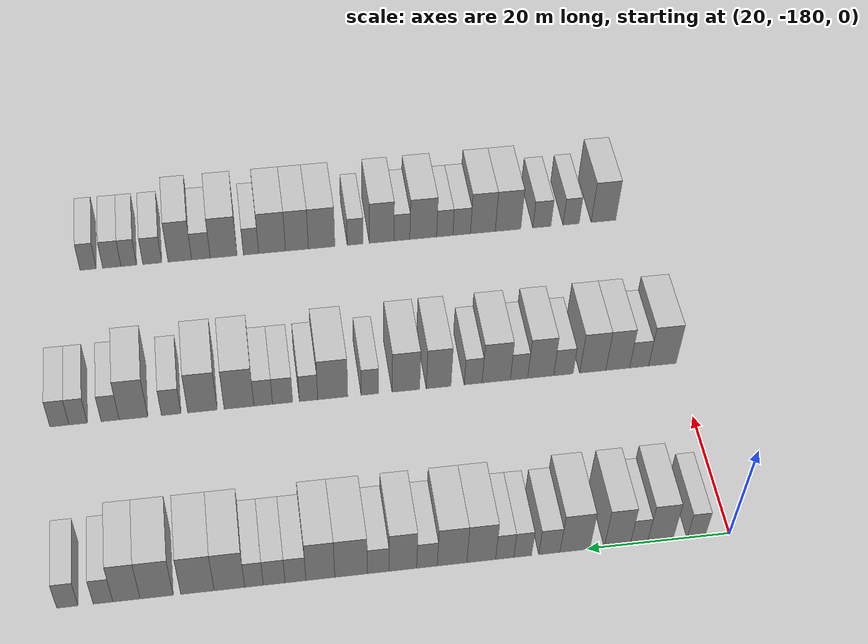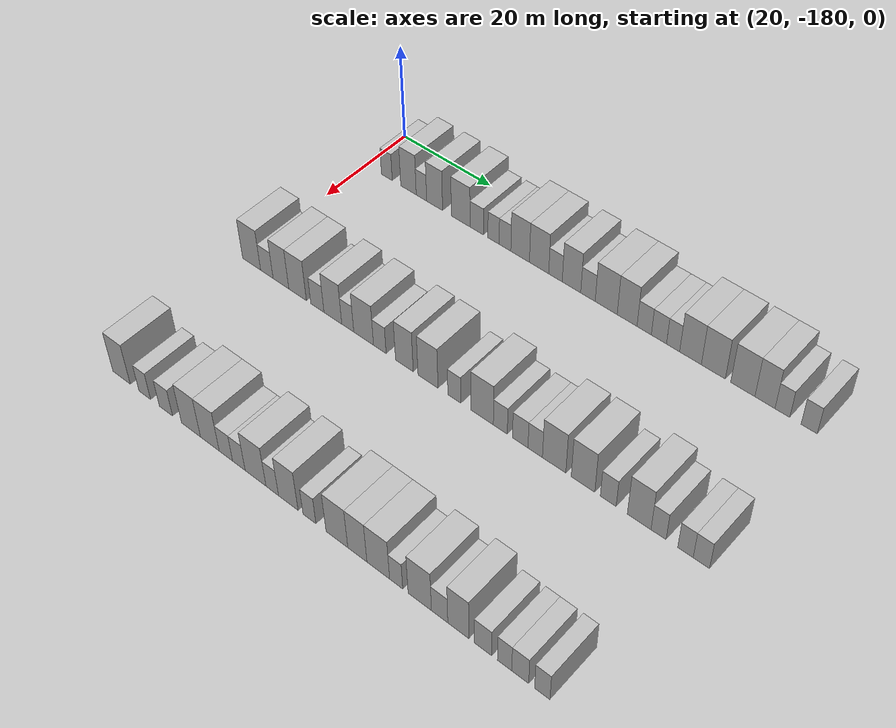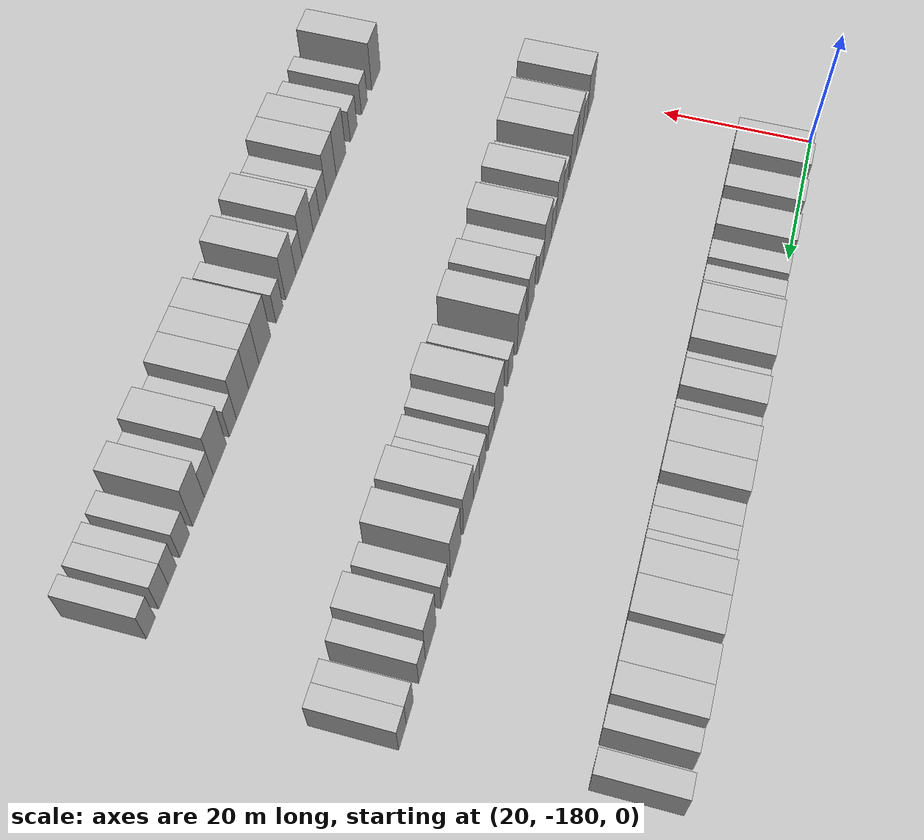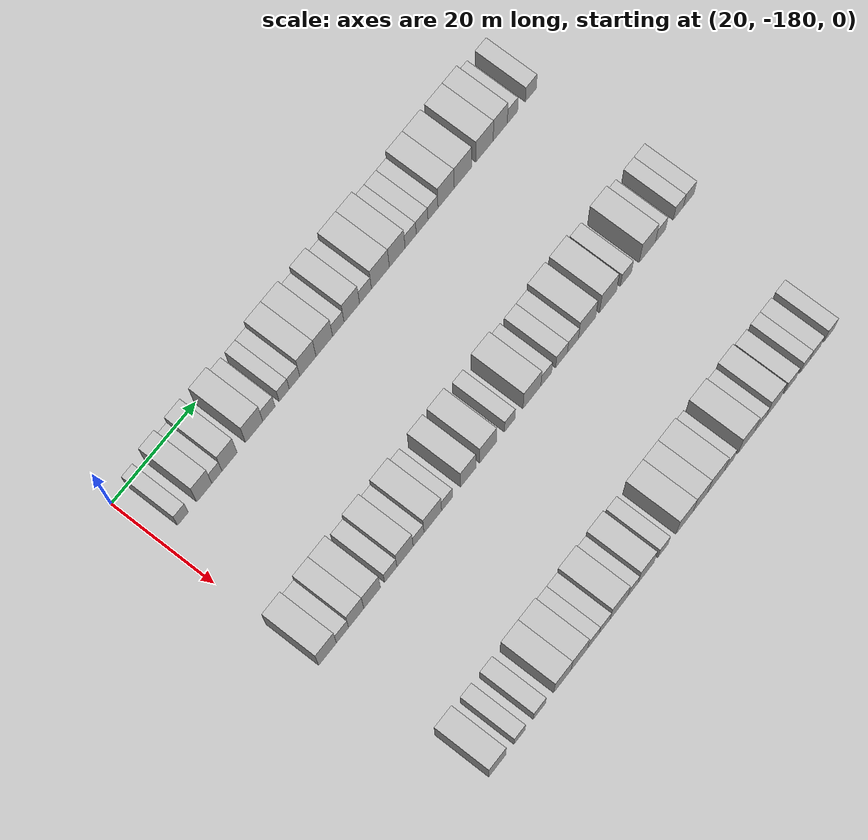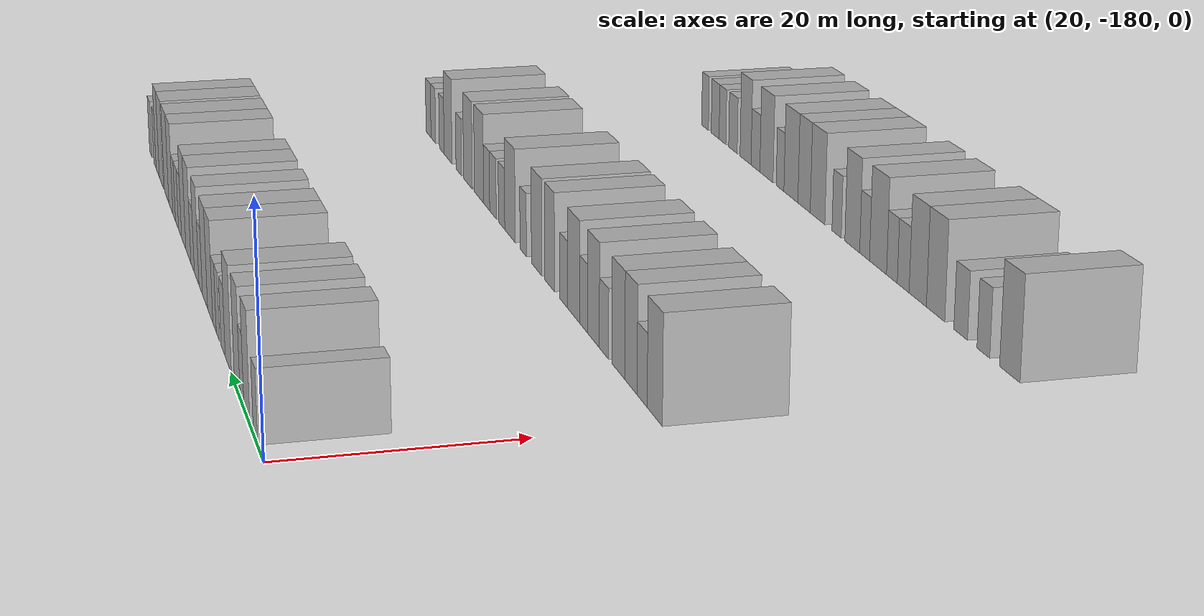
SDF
<sdf version="1.6">
 <world name="default">
  <model name="building_26">
   <static>1</static>
   <pose>25.0000 -175.1962 0 0.000000 0.000000 0.000000</pose>
   <link name="link">
    <pose>0 0 3.00 0 0 0</pose>
    <collision name="collision"><geometry><box><size>10.0000 2.5617 6.0000</size></box></geometry></collision>
    <visual name="visual">
     <cast_shadows>0</cast_shadows>
     <geometry><box><size>10.0000 2.5617 6.0000</size></box></geometry>
     <material>
      <script>
       <uri>model://HANNAS_wall/materials/scripts</uri>
       <uri>model://HANNAS_wall/materials/textures</uri>
       <name>vrc/HANNAS_wall</name>
      </script>
     </material>
    </visual>
   </link>
  </model>
  <model name="building_27">
   <static>1</static>
   <pose>25.0000 -170.1131 0 0.000000 0.000000 0.000000</pose>
   <link name="link">
    <pose>0 0 4.50 0 0 0</pose>
    <collision name="collision"><geometry><box><size>10.0000 3.6046 9.0000</size></box></geometry></collision>
    <visual name="visual">
     <cast_shadows>0</cast_shadows>
     <geometry><box><size>10.0000 3.6046 9.0000</size></box></geometry>
     <material>
      <script>
       <uri>model://HANNAS_wall/materials/scripts</uri>
       <uri>model://HANNAS_wall/materials/textures</uri>
       <name>vrc/HANNAS_wall</name>
      </script>
     </material>
    </visual>
   </link>
  </model>
  <model name="building_28">
   <static>1</static>
   <pose>25.0000 -167.1066 0 0.000000 0.000000 0.000000</pose>
   <link name="link">
    <pose>0 0 3.00 0 0 0</pose>
    <collision name="collision"><geometry><box><size>10.0000 2.4084 6.0000</size></box></geometry></collision>
    <visual name="visual">
     <cast_shadows>0</cast_shadows>
     <geometry><box><size>10.0000 2.4084 6.0000</size></box></geometry>
     <material>
      <script>
       <uri>model://HANNAS_wall/materials/scripts</uri>
       <uri>model://HANNAS_wall/materials/textures</uri>
       <name>vrc/HANNAS_wall</name>
      </script>
     </material>
    </visual>
   </link>
  </model>
  <model name="building_29">
   <static>1</static>
   <pose>25.0000 -164.0829 0 0.000000 0.000000 0.000000</pose>
   <link name="link">
    <pose>0 0 4.50 0 0 0</pose>
    <collision name="collision"><geometry><box><size>10.0000 3.6389 9.0000</size></box></geometry></collision>
    <visual name="visual">
     <cast_shadows>0</cast_shadows>
     <geometry><box><size>10.0000 3.6389 9.0000</size></box></geometry>
     <material>
      <script>
       <uri>model://HANNAS_wall/materials/scripts</uri>
       <uri>model://HANNAS_wall/materials/textures</uri>
       <name>vrc/HANNAS_wall</name>
      </script>
     </material>
    </visual>
   </link>
  </model>
  <model name="building_30">
   <static>1</static>
   <pose>25.0000 -158.1772 0 0.000000 0.000000 0.000000</pose>
   <link name="link">
    <pose>0 0 4.50 0 0 0</pose>
    <collision name="collision"><geometry><box><size>10.0000 4.1725 9.0000</size></box></geometry></collision>
    <visual name="visual">
     <cast_shadows>0</cast_shadows>
     <geometry><box><size>10.0000 4.1725 9.0000</size></box></geometry>
     <material>
      <script>
       <uri>model://HANNAS_wall/materials/scripts</uri>
       <uri>model://HANNAS_wall/materials/textures</uri>
       <name>vrc/HANNAS_wall</name>
      </script>
     </material>
    </visual>
   </link>
  </model>
  <model name="building_31">
   <static>1</static>
   <pose>25.0000 -154.6167 0 0.000000 0.000000 0.000000</pose>
   <link name="link">
    <pose>0 0 3.00 0 0 0</pose>
    <collision name="collision"><geometry><box><size>10.0000 2.9485 6.0000</size></box></geometry></collision>
    <visual name="visual">
     <cast_shadows>0</cast_shadows>
     <geometry><box><size>10.0000 2.9485 6.0000</size></box></geometry>
     <material>
      <script>
       <uri>model://HANNAS_wall/materials/scripts</uri>
       <uri>model://HANNAS_wall/materials/textures</uri>
       <name>vrc/HANNAS_wall</name>
      </script>
     </material>
    </visual>
   </link>
  </model>
  <model name="building_32">
   <static>1</static>
   <pose>25.0000 -150.9131 0 0.000000 0.000000 0.000000</pose>
   <link name="link">
    <pose>0 0 3.00 0 0 0</pose>
    <collision name="collision"><geometry><box><size>10.0000 2.4588 6.0000</size></box></geometry></collision>
    <visual name="visual">
     <cast_shadows>0</cast_shadows>
     <geometry><box><size>10.0000 2.4588 6.0000</size></box></geometry>
     <material>
      <script>
       <uri>model://HANNAS_wall/materials/scripts</uri>
       <uri>model://HANNAS_wall/materials/textures</uri>
       <name>vrc/HANNAS_wall</name>
      </script>
     </material>
    </visual>
   </link>
  </model>
  <model name="building_33">
   <static>1</static>
   <pose>25.0000 -148.4182 0 0.000000 0.000000 0.000000</pose>
   <link name="link">
    <pose>0 0 3.00 0 0 0</pose>
    <collision name="collision"><geometry><box><size>10.0000 2.5310 6.0000</size></box></geometry></collision>
    <visual name="visual">
     <cast_shadows>0</cast_shadows>
     <geometry><box><size>10.0000 2.5310 6.0000</size></box></geometry>
     <material>
      <script>
       <uri>model://HANNAS_wall/materials/scripts</uri>
       <uri>model://HANNAS_wall/materials/textures</uri>
       <name>vrc/HANNAS_wall</name>
      </script>
     </material>
    </visual>
   </link>
  </model>
  <model name="building_34">
   <static>1</static>
   <pose>25.0000 -145.1649 0 0.000000 0.000000 0.000000</pose>
   <link name="link">
    <pose>0 0 4.50 0 0 0</pose>
    <collision name="collision"><geometry><box><size>10.0000 3.9757 9.0000</size></box></geometry></collision>
    <visual name="visual">
     <cast_shadows>0</cast_shadows>
     <geometry><box><size>10.0000 3.9757 9.0000</size></box></geometry>
     <material>
      <script>
       <uri>model://HANNAS_wall/materials/scripts</uri>
       <uri>model://HANNAS_wall/materials/textures</uri>
       <name>vrc/HANNAS_wall</name>
      </script>
     </material>
    </visual>
   </link>
  </model>
  <model name="building_35">
   <static>1</static>
   <pose>25.0000 -141.1430 0 0.000000 0.000000 0.000000</pose>
   <link name="link">
    <pose>0 0 4.50 0 0 0</pose>
    <collision name="collision"><geometry><box><size>10.0000 4.0681 9.0000</size></box></geometry></collision>
    <visual name="visual">
     <cast_shadows>0</cast_shadows>
     <geometry><box><size>10.0000 4.0681 9.0000</size></box></geometry>
     <material>
      <script>
       <uri>model://HANNAS_wall/materials/scripts</uri>
       <uri>model://HANNAS_wall/materials/textures</uri>
       <name>vrc/HANNAS_wall</name>
      </script>
     </material>
    </visual>
   </link>
  </model>
  <model name="building_36">
   <static>1</static>
   <pose>25.0000 -137.6961 0 0.000000 0.000000 0.000000</pose>
   <link name="link">
    <pose>0 0 3.00 0 0 0</pose>
    <collision name="collision"><geometry><box><size>10.0000 2.8258 6.0000</size></box></geometry></collision>
    <visual name="visual">
     <cast_shadows>0</cast_shadows>
     <geometry><box><size>10.0000 2.8258 6.0000</size></box></geometry>
     <material>
      <script>
       <uri>model://HANNAS_wall/materials/scripts</uri>
       <uri>model://HANNAS_wall/materials/textures</uri>
       <name>vrc/HANNAS_wall</name>
      </script>
     </material>
    </visual>
   </link>
  </model>
  <model name="building_37">
   <static>1</static>
   <pose>25.0000 -134.3732 0 0.000000 0.000000 0.000000</pose>
   <link name="link">
    <pose>0 0 4.50 0 0 0</pose>
    <collision name="collision"><geometry><box><size>10.0000 3.8199 9.0000</size></box></geometry></collision>
    <visual name="visual">
     <cast_shadows>0</cast_shadows>
     <geometry><box><size>10.0000 3.8199 9.0000</size></box></geometry>
     <material>
      <script>
       <uri>model://HANNAS_wall/materials/scripts</uri>
       <uri>model://HANNAS_wall/materials/textures</uri>
       <name>vrc/HANNAS_wall</name>
      </script>
     </material>
    </visual>
   </link>
  </model>
  <model name="building_38">
   <static>1</static>
   <pose>25.0000 -130.9927 0 0.000000 0.000000 0.000000</pose>
   <link name="link">
    <pose>0 0 3.00 0 0 0</pose>
    <collision name="collision"><geometry><box><size>10.0000 2.9412 6.0000</size></box></geometry></collision>
    <visual name="visual">
     <cast_shadows>0</cast_shadows>
     <geometry><box><size>10.0000 2.9412 6.0000</size></box></geometry>
     <material>
      <script>
       <uri>model://HANNAS_wall/materials/scripts</uri>
       <uri>model://HANNAS_wall/materials/textures</uri>
       <name>vrc/HANNAS_wall</name>
      </script>
     </material>
    </visual>
   </link>
  </model>
  <model name="building_39">
   <static>1</static>
   <pose>25.0000 -127.3093 0 0.000000 0.000000 0.000000</pose>
   <link name="link">
    <pose>0 0 4.50 0 0 0</pose>
    <collision name="collision"><geometry><box><size>10.0000 4.4257 9.0000</size></box></geometry></collision>
    <visual name="visual">
     <cast_shadows>0</cast_shadows>
     <geometry><box><size>10.0000 4.4257 9.0000</size></box></geometry>
     <material>
      <script>
       <uri>model://HANNAS_wall/materials/scripts</uri>
       <uri>model://HANNAS_wall/materials/textures</uri>
       <name>vrc/HANNAS_wall</name>
      </script>
     </material>
    </visual>
   </link>
  </model>
  <model name="building_40">
   <static>1</static>
   <pose>25.0000 -123.1320 0 0.000000 0.000000 0.000000</pose>
   <link name="link">
    <pose>0 0 4.50 0 0 0</pose>
    <collision name="collision"><geometry><box><size>10.0000 3.9288 9.0000</size></box></geometry></collision>
    <visual name="visual">
     <cast_shadows>0</cast_shadows>
     <geometry><box><size>10.0000 3.9288 9.0000</size></box></geometry>
     <material>
      <script>
       <uri>model://HANNAS_wall/materials/scripts</uri>
       <uri>model://HANNAS_wall/materials/textures</uri>
       <name>vrc/HANNAS_wall</name>
      </script>
     </material>
    </visual>
   </link>
  </model>
  <model name="building_41">
   <static>1</static>
   <pose>25.0000 -119.7673 0 0.000000 0.000000 0.000000</pose>
   <link name="link">
    <pose>0 0 3.00 0 0 0</pose>
    <collision name="collision"><geometry><box><size>10.0000 2.8007 6.0000</size></box></geometry></collision>
    <visual name="visual">
     <cast_shadows>0</cast_shadows>
     <geometry><box><size>10.0000 2.8007 6.0000</size></box></geometry>
     <material>
      <script>
       <uri>model://HANNAS_wall/materials/scripts</uri>
       <uri>model://HANNAS_wall/materials/textures</uri>
       <name>vrc/HANNAS_wall</name>
      </script>
     </material>
    </visual>
   </link>
  </model>
  <model name="building_42">
   <static>1</static>
   <pose>25.0000 -116.8925 0 0.000000 0.000000 0.000000</pose>
   <link name="link">
    <pose>0 0 3.00 0 0 0</pose>
    <collision name="collision"><geometry><box><size>10.0000 2.9489 6.0000</size></box></geometry></collision>
    <visual name="visual">
     <cast_shadows>0</cast_shadows>
     <geometry><box><size>10.0000 2.9489 6.0000</size></box></geometry>
     <material>
      <script>
       <uri>model://HANNAS_wall/materials/scripts</uri>
       <uri>model://HANNAS_wall/materials/textures</uri>
       <name>vrc/HANNAS_wall</name>
      </script>
     </material>
    </visual>
   </link>
  </model>
  <model name="building_43">
   <static>1</static>
   <pose>25.0000 -114.1610 0 0.000000 0.000000 0.000000</pose>
   <link name="link">
    <pose>0 0 3.00 0 0 0</pose>
    <collision name="collision"><geometry><box><size>10.0000 2.5140 6.0000</size></box></geometry></collision>
    <visual name="visual">
     <cast_shadows>0</cast_shadows>
     <geometry><box><size>10.0000 2.5140 6.0000</size></box></geometry>
     <material>
      <script>
       <uri>model://HANNAS_wall/materials/scripts</uri>
       <uri>model://HANNAS_wall/materials/textures</uri>
       <name>vrc/HANNAS_wall</name>
      </script>
     </material>
    </visual>
   </link>
  </model>
  <model name="building_44">
   <static>1</static>
   <pose>25.0000 -110.8469 0 0.000000 0.000000 0.000000</pose>
   <link name="link">
    <pose>0 0 4.50 0 0 0</pose>
    <collision name="collision"><geometry><box><size>10.0000 4.1142 9.0000</size></box></geometry></collision>
    <visual name="visual">
     <cast_shadows>0</cast_shadows>
     <geometry><box><size>10.0000 4.1142 9.0000</size></box></geometry>
     <material>
      <script>
       <uri>model://HANNAS_wall/materials/scripts</uri>
       <uri>model://HANNAS_wall/materials/textures</uri>
       <name>vrc/HANNAS_wall</name>
      </script>
     </material>
    </visual>
   </link>
  </model>
  <model name="building_45">
   <static>1</static>
   <pose>25.0000 -106.5498 0 0.000000 0.000000 0.000000</pose>
   <link name="link">
    <pose>0 0 4.50 0 0 0</pose>
    <collision name="collision"><geometry><box><size>10.0000 4.4800 9.0000</size></box></geometry></collision>
    <visual name="visual">
     <cast_shadows>0</cast_shadows>
     <geometry><box><size>10.0000 4.4800 9.0000</size></box></geometry>
     <material>
      <script>
       <uri>model://HANNAS_wall/materials/scripts</uri>
       <uri>model://HANNAS_wall/materials/textures</uri>
       <name>vrc/HANNAS_wall</name>
      </script>
     </material>
    </visual>
   </link>
  </model>
  <model name="building_46">
   <static>1</static>
   <pose>25.0000 -101.0935 0 0.000000 0.000000 0.000000</pose>
   <link name="link">
    <pose>0 0 4.50 0 0 0</pose>
    <collision name="collision"><geometry><box><size>10.0000 4.4326 9.0000</size></box></geometry></collision>
    <visual name="visual">
     <cast_shadows>0</cast_shadows>
     <geometry><box><size>10.0000 4.4326 9.0000</size></box></geometry>
     <material>
      <script>
       <uri>model://HANNAS_wall/materials/scripts</uri>
       <uri>model://HANNAS_wall/materials/textures</uri>
       <name>vrc/HANNAS_wall</name>
      </script>
     </material>
    </visual>
   </link>
  </model>
  <model name="building_47">
   <static>1</static>
   <pose>25.0000 -97.0683 0 0.000000 0.000000 0.000000</pose>
   <link name="link">
    <pose>0 0 4.50 0 0 0</pose>
    <collision name="collision"><geometry><box><size>10.0000 3.6176 9.0000</size></box></geometry></collision>
    <visual name="visual">
     <cast_shadows>0</cast_shadows>
     <geometry><box><size>10.0000 3.6176 9.0000</size></box></geometry>
     <material>
      <script>
       <uri>model://HANNAS_wall/materials/scripts</uri>
       <uri>model://HANNAS_wall/materials/textures</uri>
       <name>vrc/HANNAS_wall</name>
      </script>
     </material>
    </visual>
   </link>
  </model>
  <model name="building_48">
   <static>1</static>
   <pose>25.0000 -93.9503 0 0.000000 0.000000 0.000000</pose>
   <link name="link">
    <pose>0 0 3.00 0 0 0</pose>
    <collision name="collision"><geometry><box><size>10.0000 2.6184 6.0000</size></box></geometry></collision>
    <visual name="visual">
     <cast_shadows>0</cast_shadows>
     <geometry><box><size>10.0000 2.6184 6.0000</size></box></geometry>
     <material>
      <script>
       <uri>model://HANNAS_wall/materials/scripts</uri>
       <uri>model://HANNAS_wall/materials/textures</uri>
       <name>vrc/HANNAS_wall</name>
      </script>
     </material>
    </visual>
   </link>
  </model>
  <model name="building_49">
   <static>1</static>
   <pose>25.0000 -89.2259 0 0.000000 0.000000 0.000000</pose>
   <link name="link">
    <pose>0 0 3.00 0 0 0</pose>
    <collision name="collision"><geometry><box><size>10.0000 2.8306 6.0000</size></box></geometry></collision>
    <visual name="visual">
     <cast_shadows>0</cast_shadows>
     <geometry><box><size>10.0000 2.8306 6.0000</size></box></geometry>
     <material>
      <script>
       <uri>model://HANNAS_wall/materials/scripts</uri>
       <uri>model://HANNAS_wall/materials/textures</uri>
       <name>vrc/HANNAS_wall</name>
      </script>
     </material>
    </visual>
   </link>
  </model>
  <model name="building_164">
   <static>1</static>
   <pose>55.0000 -177.8875 0 0.000000 0.000000 0.000000</pose>
   <link name="link">
    <pose>0 0 4.50 0 0 0</pose>
    <collision name="collision"><geometry><box><size>10.0000 4.2394 9.0000</size></box></geometry></collision>
    <visual name="visual">
     <cast_shadows>0</cast_shadows>
     <geometry><box><size>10.0000 4.2394 9.0000</size></box></geometry>
     <material>
      <script>
       <uri>model://HANNAS_wall/materials/scripts</uri>
       <uri>model://HANNAS_wall/materials/textures</uri>
       <name>vrc/HANNAS_wall</name>
      </script>
     </material>
    </visual>
   </link>
  </model>
  <model name="building_165">
   <static>1</static>
   <pose>55.0000 -174.3128 0 0.000000 0.000000 0.000000</pose>
   <link name="link">
    <pose>0 0 3.00 0 0 0</pose>
    <collision name="collision"><geometry><box><size>10.0000 2.9099 6.0000</size></box></geometry></collision>
    <visual name="visual">
     <cast_shadows>0</cast_shadows>
     <geometry><box><size>10.0000 2.9099 6.0000</size></box></geometry>
     <material>
      <script>
       <uri>model://HANNAS_wall/materials/scripts</uri>
       <uri>model://HANNAS_wall/materials/textures</uri>
       <name>vrc/HANNAS_wall</name>
      </script>
     </material>
    </visual>
   </link>
  </model>
  <model name="building_166">
   <static>1</static>
   <pose>55.0000 -171.0400 0 0.000000 0.000000 0.000000</pose>
   <link name="link">
    <pose>0 0 4.50 0 0 0</pose>
    <collision name="collision"><geometry><box><size>10.0000 3.6358 9.0000</size></box></geometry></collision>
    <visual name="visual">
     <cast_shadows>0</cast_shadows>
     <geometry><box><size>10.0000 3.6358 9.0000</size></box></geometry>
     <material>
      <script>
       <uri>model://HANNAS_wall/materials/scripts</uri>
       <uri>model://HANNAS_wall/materials/textures</uri>
       <name>vrc/HANNAS_wall</name>
      </script>
     </material>
    </visual>
   </link>
  </model>
  <model name="building_167">
   <static>1</static>
   <pose>55.0000 -167.2242 0 0.000000 0.000000 0.000000</pose>
   <link name="link">
    <pose>0 0 4.50 0 0 0</pose>
    <collision name="collision"><geometry><box><size>10.0000 3.9959 9.0000</size></box></geometry></collision>
    <visual name="visual">
     <cast_shadows>0</cast_shadows>
     <geometry><box><size>10.0000 3.9959 9.0000</size></box></geometry>
     <material>
      <script>
       <uri>model://HANNAS_wall/materials/scripts</uri>
       <uri>model://HANNAS_wall/materials/textures</uri>
       <name>vrc/HANNAS_wall</name>
      </script>
     </material>
    </visual>
   </link>
  </model>
  <model name="building_168">
   <static>1</static>
   <pose>55.0000 -162.7475 0 0.000000 0.000000 0.000000</pose>
   <link name="link">
    <pose>0 0 3.00 0 0 0</pose>
    <collision name="collision"><geometry><box><size>10.0000 2.9576 6.0000</size></box></geometry></collision>
    <visual name="visual">
     <cast_shadows>0</cast_shadows>
     <geometry><box><size>10.0000 2.9576 6.0000</size></box></geometry>
     <material>
      <script>
       <uri>model://HANNAS_wall/materials/scripts</uri>
       <uri>model://HANNAS_wall/materials/textures</uri>
       <name>vrc/HANNAS_wall</name>
      </script>
     </material>
    </visual>
   </link>
  </model>
  <model name="building_169">
   <static>1</static>
   <pose>55.0000 -159.2941 0 0.000000 0.000000 0.000000</pose>
   <link name="link">
    <pose>0 0 4.50 0 0 0</pose>
    <collision name="collision"><geometry><box><size>10.0000 3.9492 9.0000</size></box></geometry></collision>
    <visual name="visual">
     <cast_shadows>0</cast_shadows>
     <geometry><box><size>10.0000 3.9492 9.0000</size></box></geometry>
     <material>
      <script>
       <uri>model://HANNAS_wall/materials/scripts</uri>
       <uri>model://HANNAS_wall/materials/textures</uri>
       <name>vrc/HANNAS_wall</name>
      </script>
     </material>
    </visual>
   </link>
  </model>
  <model name="building_170">
   <static>1</static>
   <pose>55.0000 -156.0078 0 0.000000 0.000000 0.000000</pose>
   <link name="link">
    <pose>0 0 3.00 0 0 0</pose>
    <collision name="collision"><geometry><box><size>10.0000 2.6234 6.0000</size></box></geometry></collision>
    <visual name="visual">
     <cast_shadows>0</cast_shadows>
     <geometry><box><size>10.0000 2.6234 6.0000</size></box></geometry>
     <material>
      <script>
       <uri>model://HANNAS_wall/materials/scripts</uri>
       <uri>model://HANNAS_wall/materials/textures</uri>
       <name>vrc/HANNAS_wall</name>
      </script>
     </material>
    </visual>
   </link>
  </model>
  <model name="building_171">
   <static>1</static>
   <pose>55.0000 -152.5553 0 0.000000 0.000000 0.000000</pose>
   <link name="link">
    <pose>0 0 4.50 0 0 0</pose>
    <collision name="collision"><geometry><box><size>10.0000 4.2817 9.0000</size></box></geometry></collision>
    <visual name="visual">
     <cast_shadows>0</cast_shadows>
     <geometry><box><size>10.0000 4.2817 9.0000</size></box></geometry>
     <material>
      <script>
       <uri>model://HANNAS_wall/materials/scripts</uri>
       <uri>model://HANNAS_wall/materials/textures</uri>
       <name>vrc/HANNAS_wall</name>
      </script>
     </material>
    </visual>
   </link>
  </model>
  <model name="building_172">
   <static>1</static>
   <pose>55.0000 -149.0735 0 0.000000 0.000000 0.000000</pose>
   <link name="link">
    <pose>0 0 3.00 0 0 0</pose>
    <collision name="collision"><geometry><box><size>10.0000 2.6819 6.0000</size></box></geometry></collision>
    <visual name="visual">
     <cast_shadows>0</cast_shadows>
     <geometry><box><size>10.0000 2.6819 6.0000</size></box></geometry>
     <material>
      <script>
       <uri>model://HANNAS_wall/materials/scripts</uri>
       <uri>model://HANNAS_wall/materials/textures</uri>
       <name>vrc/HANNAS_wall</name>
      </script>
     </material>
    </visual>
   </link>
  </model>
  <model name="building_173">
   <static>1</static>
   <pose>55.0000 -143.8794 0 0.000000 0.000000 0.000000</pose>
   <link name="link">
    <pose>0 0 4.50 0 0 0</pose>
    <collision name="collision"><geometry><box><size>10.0000 3.7063 9.0000</size></box></geometry></collision>
    <visual name="visual">
     <cast_shadows>0</cast_shadows>
     <geometry><box><size>10.0000 3.7063 9.0000</size></box></geometry>
     <material>
      <script>
       <uri>model://HANNAS_wall/materials/scripts</uri>
       <uri>model://HANNAS_wall/materials/textures</uri>
       <name>vrc/HANNAS_wall</name>
      </script>
     </material>
    </visual>
   </link>
  </model>
  <model name="building_174">
   <static>1</static>
   <pose>55.0000 -138.9685 0 0.000000 0.000000 0.000000</pose>
   <link name="link">
    <pose>0 0 4.50 0 0 0</pose>
    <collision name="collision"><geometry><box><size>10.0000 4.1154 9.0000</size></box></geometry></collision>
    <visual name="visual">
     <cast_shadows>0</cast_shadows>
     <geometry><box><size>10.0000 4.1154 9.0000</size></box></geometry>
     <material>
      <script>
       <uri>model://HANNAS_wall/materials/scripts</uri>
       <uri>model://HANNAS_wall/materials/textures</uri>
       <name>vrc/HANNAS_wall</name>
      </script>
     </material>
    </visual>
   </link>
  </model>
  <model name="building_175">
   <static>1</static>
   <pose>55.0000 -133.6010 0 0.000000 0.000000 0.000000</pose>
   <link name="link">
    <pose>0 0 3.00 0 0 0</pose>
    <collision name="collision"><geometry><box><size>10.0000 2.6196 6.0000</size></box></geometry></collision>
    <visual name="visual">
     <cast_shadows>0</cast_shadows>
     <geometry><box><size>10.0000 2.6196 6.0000</size></box></geometry>
     <material>
      <script>
       <uri>model://HANNAS_wall/materials/scripts</uri>
       <uri>model://HANNAS_wall/materials/textures</uri>
       <name>vrc/HANNAS_wall</name>
      </script>
     </material>
    </visual>
   </link>
  </model>
  <model name="building_176">
   <static>1</static>
   <pose>55.0000 -128.0680 0 0.000000 0.000000 0.000000</pose>
   <link name="link">
    <pose>0 0 4.50 0 0 0</pose>
    <collision name="collision"><geometry><box><size>10.0000 4.4464 9.0000</size></box></geometry></collision>
    <visual name="visual">
     <cast_shadows>0</cast_shadows>
     <geometry><box><size>10.0000 4.4464 9.0000</size></box></geometry>
     <material>
      <script>
       <uri>model://HANNAS_wall/materials/scripts</uri>
       <uri>model://HANNAS_wall/materials/textures</uri>
       <name>vrc/HANNAS_wall</name>
      </script>
     </material>
    </visual>
   </link>
  </model>
  <model name="building_177">
   <static>1</static>
   <pose>55.0000 -124.4856 0 0.000000 0.000000 0.000000</pose>
   <link name="link">
    <pose>0 0 3.00 0 0 0</pose>
    <collision name="collision"><geometry><box><size>10.0000 2.7184 6.0000</size></box></geometry></collision>
    <visual name="visual">
     <cast_shadows>0</cast_shadows>
     <geometry><box><size>10.0000 2.7184 6.0000</size></box></geometry>
     <material>
      <script>
       <uri>model://HANNAS_wall/materials/scripts</uri>
       <uri>model://HANNAS_wall/materials/textures</uri>
       <name>vrc/HANNAS_wall</name>
      </script>
     </material>
    </visual>
   </link>
  </model>
  <model name="building_178">
   <static>1</static>
   <pose>55.0000 -120.6392 0 0.000000 0.000000 0.000000</pose>
   <link name="link">
    <pose>0 0 3.00 0 0 0</pose>
    <collision name="collision"><geometry><box><size>10.0000 2.9743 6.0000</size></box></geometry></collision>
    <visual name="visual">
     <cast_shadows>0</cast_shadows>
     <geometry><box><size>10.0000 2.9743 6.0000</size></box></geometry>
     <material>
      <script>
       <uri>model://HANNAS_wall/materials/scripts</uri>
       <uri>model://HANNAS_wall/materials/textures</uri>
       <name>vrc/HANNAS_wall</name>
      </script>
     </material>
    </visual>
   </link>
  </model>
  <model name="building_179">
   <static>1</static>
   <pose>55.0000 -117.7787 0 0.000000 0.000000 0.000000</pose>
   <link name="link">
    <pose>0 0 3.00 0 0 0</pose>
    <collision name="collision"><geometry><box><size>10.0000 2.7468 6.0000</size></box></geometry></collision>
    <visual name="visual">
     <cast_shadows>0</cast_shadows>
     <geometry><box><size>10.0000 2.7468 6.0000</size></box></geometry>
     <material>
      <script>
       <uri>model://HANNAS_wall/materials/scripts</uri>
       <uri>model://HANNAS_wall/materials/textures</uri>
       <name>vrc/HANNAS_wall</name>
      </script>
     </material>
    </visual>
   </link>
  </model>
  <model name="building_180">
   <static>1</static>
   <pose>55.0000 -114.2165 0 0.000000 0.000000 0.000000</pose>
   <link name="link">
    <pose>0 0 4.50 0 0 0</pose>
    <collision name="collision"><geometry><box><size>10.0000 4.3775 9.0000</size></box></geometry></collision>
    <visual name="visual">
     <cast_shadows>0</cast_shadows>
     <geometry><box><size>10.0000 4.3775 9.0000</size></box></geometry>
     <material>
      <script>
       <uri>model://HANNAS_wall/materials/scripts</uri>
       <uri>model://HANNAS_wall/materials/textures</uri>
       <name>vrc/HANNAS_wall</name>
      </script>
     </material>
    </visual>
   </link>
  </model>
  <model name="building_181">
   <static>1</static>
   <pose>55.0000 -108.8630 0 0.000000 0.000000 0.000000</pose>
   <link name="link">
    <pose>0 0 4.50 0 0 0</pose>
    <collision name="collision"><geometry><box><size>10.0000 4.3296 9.0000</size></box></geometry></collision>
    <visual name="visual">
     <cast_shadows>0</cast_shadows>
     <geometry><box><size>10.0000 4.3296 9.0000</size></box></geometry>
     <material>
      <script>
       <uri>model://HANNAS_wall/materials/scripts</uri>
       <uri>model://HANNAS_wall/materials/textures</uri>
       <name>vrc/HANNAS_wall</name>
      </script>
     </material>
    </visual>
   </link>
  </model>
  <model name="building_182">
   <static>1</static>
   <pose>55.0000 -104.2739 0 0.000000 0.000000 0.000000</pose>
   <link name="link">
    <pose>0 0 3.00 0 0 0</pose>
    <collision name="collision"><geometry><box><size>10.0000 2.8486 6.0000</size></box></geometry></collision>
    <visual name="visual">
     <cast_shadows>0</cast_shadows>
     <geometry><box><size>10.0000 2.8486 6.0000</size></box></geometry>
     <material>
      <script>
       <uri>model://HANNAS_wall/materials/scripts</uri>
       <uri>model://HANNAS_wall/materials/textures</uri>
       <name>vrc/HANNAS_wall</name>
      </script>
     </material>
    </visual>
   </link>
  </model>
  <model name="building_183">
   <static>1</static>
   <pose>55.0000 -98.7677 0 0.000000 0.000000 0.000000</pose>
   <link name="link">
    <pose>0 0 4.50 0 0 0</pose>
    <collision name="collision"><geometry><box><size>10.0000 4.1636 9.0000</size></box></geometry></collision>
    <visual name="visual">
     <cast_shadows>0</cast_shadows>
     <geometry><box><size>10.0000 4.1636 9.0000</size></box></geometry>
     <material>
      <script>
       <uri>model://HANNAS_wall/materials/scripts</uri>
       <uri>model://HANNAS_wall/materials/textures</uri>
       <name>vrc/HANNAS_wall</name>
      </script>
     </material>
    </visual>
   </link>
  </model>
  <model name="building_184">
   <static>1</static>
   <pose>55.0000 -95.3737 0 0.000000 0.000000 0.000000</pose>
   <link name="link">
    <pose>0 0 3.00 0 0 0</pose>
    <collision name="collision"><geometry><box><size>10.0000 2.6246 6.0000</size></box></geometry></collision>
    <visual name="visual">
     <cast_shadows>0</cast_shadows>
     <geometry><box><size>10.0000 2.6246 6.0000</size></box></geometry>
     <material>
      <script>
       <uri>model://HANNAS_wall/materials/scripts</uri>
       <uri>model://HANNAS_wall/materials/textures</uri>
       <name>vrc/HANNAS_wall</name>
      </script>
     </material>
    </visual>
   </link>
  </model>
  <model name="building_185">
   <static>1</static>
   <pose>55.0000 -90.7417 0 0.000000 0.000000 0.000000</pose>
   <link name="link">
    <pose>0 0 3.00 0 0 0</pose>
    <collision name="collision"><geometry><box><size>10.0000 2.6392 6.0000</size></box></geometry></collision>
    <visual name="visual">
     <cast_shadows>0</cast_shadows>
     <geometry><box><size>10.0000 2.6392 6.0000</size></box></geometry>
     <material>
      <script>
       <uri>model://HANNAS_wall/materials/scripts</uri>
       <uri>model://HANNAS_wall/materials/textures</uri>
       <name>vrc/HANNAS_wall</name>
      </script>
     </material>
    </visual>
   </link>
  </model>
  <model name="building_186">
   <static>1</static>
   <pose>55.0000 -88.0400 0 0.000000 0.000000 0.000000</pose>
   <link name="link">
    <pose>0 0 3.00 0 0 0</pose>
    <collision name="collision"><geometry><box><size>10.0000 2.7642 6.0000</size></box></geometry></collision>
    <visual name="visual">
     <cast_shadows>0</cast_shadows>
     <geometry><box><size>10.0000 2.7642 6.0000</size></box></geometry>
     <material>
      <script>
       <uri>model://HANNAS_wall/materials/scripts</uri>
       <uri>model://HANNAS_wall/materials/textures</uri>
       <name>vrc/HANNAS_wall</name>
      </script>
     </material>
    </visual>
   </link>
  </model>
  <model name="building_303">
   <static>1</static>
   <pose>85.0000 -175.5466 0 0.000000 0.000000 0.000000</pose>
   <link name="link">
    <pose>0 0 4.50 0 0 0</pose>
    <collision name="collision"><geometry><box><size>10.0000 4.0556 9.0000</size></box></geometry></collision>
    <visual name="visual">
     <cast_shadows>0</cast_shadows>
     <geometry><box><size>10.0000 4.0556 9.0000</size></box></geometry>
     <material>
      <script>
       <uri>model://HANNAS_wall/materials/scripts</uri>
       <uri>model://HANNAS_wall/materials/textures</uri>
       <name>vrc/HANNAS_wall</name>
      </script>
     </material>
    </visual>
   </link>
  </model>
  <model name="building_304">
   <static>1</static>
   <pose>85.0000 -170.1891 0 0.000000 0.000000 0.000000</pose>
   <link name="link">
    <pose>0 0 3.00 0 0 0</pose>
    <collision name="collision"><geometry><box><size>10.0000 2.6595 6.0000</size></box></geometry></collision>
    <visual name="visual">
     <cast_shadows>0</cast_shadows>
     <geometry><box><size>10.0000 2.6595 6.0000</size></box></geometry>
     <material>
      <script>
       <uri>model://HANNAS_wall/materials/scripts</uri>
       <uri>model://HANNAS_wall/materials/textures</uri>
       <name>vrc/HANNAS_wall</name>
      </script>
     </material>
    </visual>
   </link>
  </model>
  <model name="building_305">
   <static>1</static>
   <pose>85.0000 -165.3776 0 0.000000 0.000000 0.000000</pose>
   <link name="link">
    <pose>0 0 3.00 0 0 0</pose>
    <collision name="collision"><geometry><box><size>10.0000 2.9635 6.0000</size></box></geometry></collision>
    <visual name="visual">
     <cast_shadows>0</cast_shadows>
     <geometry><box><size>10.0000 2.9635 6.0000</size></box></geometry>
     <material>
      <script>
       <uri>model://HANNAS_wall/materials/scripts</uri>
       <uri>model://HANNAS_wall/materials/textures</uri>
       <name>vrc/HANNAS_wall</name>
      </script>
     </material>
    </visual>
   </link>
  </model>
  <model name="building_306">
   <static>1</static>
   <pose>85.0000 -159.8033 0 0.000000 0.000000 0.000000</pose>
   <link name="link">
    <pose>0 0 4.50 0 0 0</pose>
    <collision name="collision"><geometry><box><size>10.0000 4.1850 9.0000</size></box></geometry></collision>
    <visual name="visual">
     <cast_shadows>0</cast_shadows>
     <geometry><box><size>10.0000 4.1850 9.0000</size></box></geometry>
     <material>
      <script>
       <uri>model://HANNAS_wall/materials/scripts</uri>
       <uri>model://HANNAS_wall/materials/textures</uri>
       <name>vrc/HANNAS_wall</name>
      </script>
     </material>
    </visual>
   </link>
  </model>
  <model name="building_307">
   <static>1</static>
   <pose>85.0000 -155.6786 0 0.000000 0.000000 0.000000</pose>
   <link name="link">
    <pose>0 0 4.50 0 0 0</pose>
    <collision name="collision"><geometry><box><size>10.0000 4.0644 9.0000</size></box></geometry></collision>
    <visual name="visual">
     <cast_shadows>0</cast_shadows>
     <geometry><box><size>10.0000 4.0644 9.0000</size></box></geometry>
     <material>
      <script>
       <uri>model://HANNAS_wall/materials/scripts</uri>
       <uri>model://HANNAS_wall/materials/textures</uri>
       <name>vrc/HANNAS_wall</name>
      </script>
     </material>
    </visual>
   </link>
  </model>
  <model name="building_308">
   <static>1</static>
   <pose>85.0000 -152.2137 0 0.000000 0.000000 0.000000</pose>
   <link name="link">
    <pose>0 0 3.00 0 0 0</pose>
    <collision name="collision"><geometry><box><size>10.0000 2.8655 6.0000</size></box></geometry></collision>
    <visual name="visual">
     <cast_shadows>0</cast_shadows>
     <geometry><box><size>10.0000 2.8655 6.0000</size></box></geometry>
     <material>
      <script>
       <uri>model://HANNAS_wall/materials/scripts</uri>
       <uri>model://HANNAS_wall/materials/textures</uri>
       <name>vrc/HANNAS_wall</name>
      </script>
     </material>
    </visual>
   </link>
  </model>
  <model name="building_309">
   <static>1</static>
   <pose>85.0000 -149.4531 0 0.000000 0.000000 0.000000</pose>
   <link name="link">
    <pose>0 0 3.00 0 0 0</pose>
    <collision name="collision"><geometry><box><size>10.0000 2.6557 6.0000</size></box></geometry></collision>
    <visual name="visual">
     <cast_shadows>0</cast_shadows>
     <geometry><box><size>10.0000 2.6557 6.0000</size></box></geometry>
     <material>
      <script>
       <uri>model://HANNAS_wall/materials/scripts</uri>
       <uri>model://HANNAS_wall/materials/textures</uri>
       <name>vrc/HANNAS_wall</name>
      </script>
     </material>
    </visual>
   </link>
  </model>
  <model name="building_310">
   <static>1</static>
   <pose>85.0000 -145.9524 0 0.000000 0.000000 0.000000</pose>
   <link name="link">
    <pose>0 0 4.50 0 0 0</pose>
    <collision name="collision"><geometry><box><size>10.0000 4.3456 9.0000</size></box></geometry></collision>
    <visual name="visual">
     <cast_shadows>0</cast_shadows>
     <geometry><box><size>10.0000 4.3456 9.0000</size></box></geometry>
     <material>
      <script>
       <uri>model://HANNAS_wall/materials/scripts</uri>
       <uri>model://HANNAS_wall/materials/textures</uri>
       <name>vrc/HANNAS_wall</name>
      </script>
     </material>
    </visual>
   </link>
  </model>
  <model name="building_311">
   <static>1</static>
   <pose>85.0000 -142.4918 0 0.000000 0.000000 0.000000</pose>
   <link name="link">
    <pose>0 0 3.00 0 0 0</pose>
    <collision name="collision"><geometry><box><size>10.0000 2.5756 6.0000</size></box></geometry></collision>
    <visual name="visual">
     <cast_shadows>0</cast_shadows>
     <geometry><box><size>10.0000 2.5756 6.0000</size></box></geometry>
     <material>
      <script>
       <uri>model://HANNAS_wall/materials/scripts</uri>
       <uri>model://HANNAS_wall/materials/textures</uri>
       <name>vrc/HANNAS_wall</name>
      </script>
     </material>
    </visual>
   </link>
  </model>
  <model name="building_312">
   <static>1</static>
   <pose>85.0000 -139.2163 0 0.000000 0.000000 0.000000</pose>
   <link name="link">
    <pose>0 0 4.50 0 0 0</pose>
    <collision name="collision"><geometry><box><size>10.0000 3.9755 9.0000</size></box></geometry></collision>
    <visual name="visual">
     <cast_shadows>0</cast_shadows>
     <geometry><box><size>10.0000 3.9755 9.0000</size></box></geometry>
     <material>
      <script>
       <uri>model://HANNAS_wall/materials/scripts</uri>
       <uri>model://HANNAS_wall/materials/textures</uri>
       <name>vrc/HANNAS_wall</name>
      </script>
     </material>
    </visual>
   </link>
  </model>
  <model name="building_313">
   <static>1</static>
   <pose>85.0000 -134.9404 0 0.000000 0.000000 0.000000</pose>
   <link name="link">
    <pose>0 0 3.00 0 0 0</pose>
    <collision name="collision"><geometry><box><size>10.0000 2.5762 6.0000</size></box></geometry></collision>
    <visual name="visual">
     <cast_shadows>0</cast_shadows>
     <geometry><box><size>10.0000 2.5762 6.0000</size></box></geometry>
     <material>
      <script>
       <uri>model://HANNAS_wall/materials/scripts</uri>
       <uri>model://HANNAS_wall/materials/textures</uri>
       <name>vrc/HANNAS_wall</name>
      </script>
     </material>
    </visual>
   </link>
  </model>
  <model name="building_314">
   <static>1</static>
   <pose>85.0000 -129.5282 0 0.000000 0.000000 0.000000</pose>
   <link name="link">
    <pose>0 0 4.50 0 0 0</pose>
    <collision name="collision"><geometry><box><size>10.0000 4.2482 9.0000</size></box></geometry></collision>
    <visual name="visual">
     <cast_shadows>0</cast_shadows>
     <geometry><box><size>10.0000 4.2482 9.0000</size></box></geometry>
     <material>
      <script>
       <uri>model://HANNAS_wall/materials/scripts</uri>
       <uri>model://HANNAS_wall/materials/textures</uri>
       <name>vrc/HANNAS_wall</name>
      </script>
     </material>
    </visual>
   </link>
  </model>
  <model name="building_315">
   <static>1</static>
   <pose>85.0000 -125.5636 0 0.000000 0.000000 0.000000</pose>
   <link name="link">
    <pose>0 0 4.50 0 0 0</pose>
    <collision name="collision"><geometry><box><size>10.0000 3.6810 9.0000</size></box></geometry></collision>
    <visual name="visual">
     <cast_shadows>0</cast_shadows>
     <geometry><box><size>10.0000 3.6810 9.0000</size></box></geometry>
     <material>
      <script>
       <uri>model://HANNAS_wall/materials/scripts</uri>
       <uri>model://HANNAS_wall/materials/textures</uri>
       <name>vrc/HANNAS_wall</name>
      </script>
     </material>
    </visual>
   </link>
  </model>
  <model name="building_316">
   <static>1</static>
   <pose>85.0000 -121.5758 0 0.000000 0.000000 0.000000</pose>
   <link name="link">
    <pose>0 0 4.50 0 0 0</pose>
    <collision name="collision"><geometry><box><size>10.0000 4.2946 9.0000</size></box></geometry></collision>
    <visual name="visual">
     <cast_shadows>0</cast_shadows>
     <geometry><box><size>10.0000 4.2946 9.0000</size></box></geometry>
     <material>
      <script>
       <uri>model://HANNAS_wall/materials/scripts</uri>
       <uri>model://HANNAS_wall/materials/textures</uri>
       <name>vrc/HANNAS_wall</name>
      </script>
     </material>
    </visual>
   </link>
  </model>
  <model name="building_317">
   <static>1</static>
   <pose>85.0000 -118.2107 0 0.000000 0.000000 0.000000</pose>
   <link name="link">
    <pose>0 0 3.00 0 0 0</pose>
    <collision name="collision"><geometry><box><size>10.0000 2.4356 6.0000</size></box></geometry></collision>
    <visual name="visual">
     <cast_shadows>0</cast_shadows>
     <geometry><box><size>10.0000 2.4356 6.0000</size></box></geometry>
     <material>
      <script>
       <uri>model://HANNAS_wall/materials/scripts</uri>
       <uri>model://HANNAS_wall/materials/textures</uri>
       <name>vrc/HANNAS_wall</name>
      </script>
     </material>
    </visual>
   </link>
  </model>
  <model name="building_318">
   <static>1</static>
   <pose>85.0000 -113.8548 0 0.000000 0.000000 0.000000</pose>
   <link name="link">
    <pose>0 0 4.50 0 0 0</pose>
    <collision name="collision"><geometry><box><size>10.0000 4.2762 9.0000</size></box></geometry></collision>
    <visual name="visual">
     <cast_shadows>0</cast_shadows>
     <geometry><box><size>10.0000 4.2762 9.0000</size></box></geometry>
     <material>
      <script>
       <uri>model://HANNAS_wall/materials/scripts</uri>
       <uri>model://HANNAS_wall/materials/textures</uri>
       <name>vrc/HANNAS_wall</name>
      </script>
     </material>
    </visual>
   </link>
  </model>
  <model name="building_319">
   <static>1</static>
   <pose>85.0000 -110.2433 0 0.000000 0.000000 0.000000</pose>
   <link name="link">
    <pose>0 0 3.00 0 0 0</pose>
    <collision name="collision"><geometry><box><size>10.0000 2.9469 6.0000</size></box></geometry></collision>
    <visual name="visual">
     <cast_shadows>0</cast_shadows>
     <geometry><box><size>10.0000 2.9469 6.0000</size></box></geometry>
     <material>
      <script>
       <uri>model://HANNAS_wall/materials/scripts</uri>
       <uri>model://HANNAS_wall/materials/textures</uri>
       <name>vrc/HANNAS_wall</name>
      </script>
     </material>
    </visual>
   </link>
  </model>
  <model name="building_320">
   <static>1</static>
   <pose>85.0000 -106.8965 0 0.000000 0.000000 0.000000</pose>
   <link name="link">
    <pose>0 0 4.50 0 0 0</pose>
    <collision name="collision"><geometry><box><size>10.0000 3.7466 9.0000</size></box></geometry></collision>
    <visual name="visual">
     <cast_shadows>0</cast_shadows>
     <geometry><box><size>10.0000 3.7466 9.0000</size></box></geometry>
     <material>
      <script>
       <uri>model://HANNAS_wall/materials/scripts</uri>
       <uri>model://HANNAS_wall/materials/textures</uri>
       <name>vrc/HANNAS_wall</name>
      </script>
     </material>
    </visual>
   </link>
  </model>
  <model name="building_321">
   <static>1</static>
   <pose>85.0000 -102.5287 0 0.000000 0.000000 0.000000</pose>
   <link name="link">
    <pose>0 0 3.00 0 0 0</pose>
    <collision name="collision"><geometry><box><size>10.0000 2.9891 6.0000</size></box></geometry></collision>
    <visual name="visual">
     <cast_shadows>0</cast_shadows>
     <geometry><box><size>10.0000 2.9891 6.0000</size></box></geometry>
     <material>
      <script>
       <uri>model://HANNAS_wall/materials/scripts</uri>
       <uri>model://HANNAS_wall/materials/textures</uri>
       <name>vrc/HANNAS_wall</name>
      </script>
     </material>
    </visual>
   </link>
  </model>
  <model name="building_322">
   <static>1</static>
   <pose>85.0000 -98.8058 0 0.000000 0.000000 0.000000</pose>
   <link name="link">
    <pose>0 0 3.00 0 0 0</pose>
    <collision name="collision"><geometry><box><size>10.0000 2.4567 6.0000</size></box></geometry></collision>
    <visual name="visual">
     <cast_shadows>0</cast_shadows>
     <geometry><box><size>10.0000 2.4567 6.0000</size></box></geometry>
     <material>
      <script>
       <uri>model://HANNAS_wall/materials/scripts</uri>
       <uri>model://HANNAS_wall/materials/textures</uri>
       <name>vrc/HANNAS_wall</name>
      </script>
     </material>
    </visual>
   </link>
  </model>
  <model name="building_323">
   <static>1</static>
   <pose>85.0000 -96.1385 0 0.000000 0.000000 0.000000</pose>
   <link name="link">
    <pose>0 0 3.00 0 0 0</pose>
    <collision name="collision"><geometry><box><size>10.0000 2.8778 6.0000</size></box></geometry></collision>
    <visual name="visual">
     <cast_shadows>0</cast_shadows>
     <geometry><box><size>10.0000 2.8778 6.0000</size></box></geometry>
     <material>
      <script>
       <uri>model://HANNAS_wall/materials/scripts</uri>
       <uri>model://HANNAS_wall/materials/textures</uri>
       <name>vrc/HANNAS_wall</name>
      </script>
     </material>
    </visual>
   </link>
  </model>
  <model name="building_324">
   <static>1</static>
   <pose>85.0000 -92.4169 0 0.000000 0.000000 0.000000</pose>
   <link name="link">
    <pose>0 0 3.00 0 0 0</pose>
    <collision name="collision"><geometry><box><size>10.0000 2.5654 6.0000</size></box></geometry></collision>
    <visual name="visual">
     <cast_shadows>0</cast_shadows>
     <geometry><box><size>10.0000 2.5654 6.0000</size></box></geometry>
     <material>
      <script>
       <uri>model://HANNAS_wall/materials/scripts</uri>
       <uri>model://HANNAS_wall/materials/textures</uri>
       <name>vrc/HANNAS_wall</name>
      </script>
     </material>
    </visual>
   </link>
  </model>
 </world>
</sdf>
